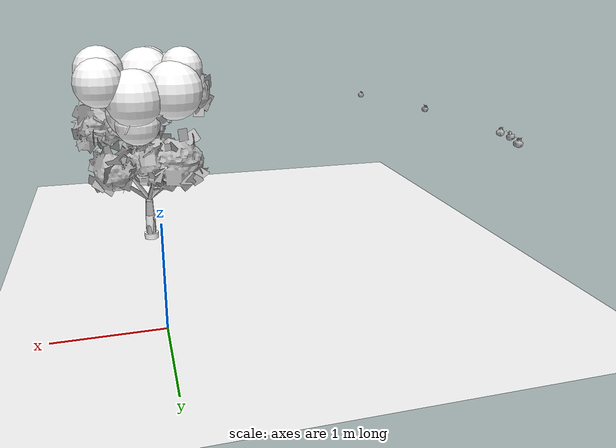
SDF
<sdf version="1.11">
 <world name="peach_orchard">
  <model name="ground">
   <static>true</static>
   <link name="link">
    <visual name="soil">
     <geometry><plane><normal>0 0 1</normal><size>32 22</size></plane></geometry>
     <material>
      <ambient>1 1 1 1</ambient>
      <diffuse>1 1 1 1</diffuse>
      <specular>0.1 0.1 0.1 1</specular>
      <pbr>
       <metal>
        <albedo_map>textures/soil_albedo.png</albedo_map>
        <normal_map type="tangent">textures/soil_normal.png</normal_map>
        <roughness>0.95</roughness>
        <metalness>0</metalness>
       </metal>
      </pbr>
     </material>
    </visual>
    <collision name="c_soil">
     <geometry><plane><normal>0 0 1</normal><size>32 22</size></plane></geometry>
    </collision>
   </link>
  </model>
  <model name="tree_r2_t2">
   <pose>0 -2.2 0 0 0 0</pose>
   <static>true</static>
   <link name="link">
    <visual name="tree_mesh">
     <pose>0 0 0 0 0 0.0732803</pose>
     <geometry>
      <mesh><uri>model://peach_sim/meshes/peach_tree_a.glb</uri><scale>0.938625 0.938625 0.938625</scale></mesh>
     </geometry>
    </visual>
    <visual name="trunk_0">
     <pose>0 0 0.149246 0 0 0</pose>
     <geometry><cylinder><radius>0.0567188</radius><length>0.298492</length></cylinder></geometry>
     <material>
      <ambient>1 1 1 1</ambient>
      <diffuse>1 1 1 1</diffuse>
      <specular>0.1 0.1 0.1 1</specular>
      <pbr>
       <metal>
        <albedo_map>textures/bark_albedo.png</albedo_map>
        <normal_map type="tangent">textures/bark_normal.png</normal_map>
        <roughness>0.9</roughness>
        <metalness>0</metalness>
       </metal>
      </pbr>
     </material>
    </visual>
    <collision name="c_trunk_0">
     <pose>0 0 0.149246 0 0 0</pose>
     <geometry><cylinder><radius>0.0567188</radius><length>0.298492</length></cylinder></geometry>
    </collision>
    <visual name="trunk_1">
     <pose>0 0 0.420602 0 0 0</pose>
     <geometry><cylinder><radius>0.0408375</radius><length>0.244221</length></cylinder></geometry>
     <material>
      <ambient>1 1 1 1</ambient>
      <diffuse>1 1 1 1</diffuse>
      <specular>0.1 0.1 0.1 1</specular>
      <pbr>
       <metal>
        <albedo_map>textures/bark_albedo.png</albedo_map>
        <normal_map type="tangent">textures/bark_normal.png</normal_map>
        <roughness>0.9</roughness>
        <metalness>0</metalness>
       </metal>
      </pbr>
     </material>
    </visual>
    <collision name="c_trunk_1">
     <pose>0 0 0.420602 0 0 0</pose>
     <geometry><cylinder><radius>0.0408375</radius><length>0.244221</length></cylinder></geometry>
    </collision>
    <visual name="root_flare">
     <pose>0 0 0.035 0 0 0</pose>
     <geometry><cylinder><radius>0.0822423</radius><length>0.07</length></cylinder></geometry>
     <material>
      <ambient>1 1 1 1</ambient>
      <diffuse>1 1 1 1</diffuse>
      <specular>0.1 0.1 0.1 1</specular>
      <pbr>
       <metal>
        <albedo_map>textures/bark_albedo.png</albedo_map>
        <normal_map type="tangent">textures/bark_normal.png</normal_map>
        <roughness>0.95</roughness>
        <metalness>0</metalness>
       </metal>
      </pbr>
     </material>
    </visual>
    <visual name="scaffold_0">
     <pose>-0.105177 0.219423 0.684219 0 0.920943 2.01777</pose>
     <geometry><cylinder><radius>0.022</radius><length>0.611245</length></cylinder></geometry>
     <material>
      <ambient>1 1 1 1</ambient>
      <diffuse>1 1 1 1</diffuse>
      <specular>0.1 0.1 0.1 1</specular>
      <pbr>
       <metal>
        <albedo_map>textures/bark_albedo.png</albedo_map>
        <normal_map type="tangent">textures/bark_normal.png</normal_map>
        <roughness>0.9</roughness>
        <metalness>0</metalness>
       </metal>
      </pbr>
     </material>
    </visual>
    <collision name="c_scaffold_0">
     <pose>-0.105177 0.219423 0.684219 0 0.920943 2.01777</pose>
     <geometry><cylinder><radius>0.022</radius><length>0.611245</length></cylinder></geometry>
    </collision>
    <visual name="branchlet_0_0">
     <pose>-0.273988 0.348989 0.852574 0 1.04501 3.0958</pose>
     <geometry><cylinder><radius>0.012</radius><length>0.252545</length></cylinder></geometry>
     <material>
      <ambient>1 1 1 1</ambient>
      <diffuse>1 1 1 1</diffuse>
      <specular>0.1 0.1 0.1 1</specular>
      <pbr>
       <metal>
        <albedo_map>textures/bark_albedo.png</albedo_map>
        <normal_map type="tangent">textures/bark_normal.png</normal_map>
        <roughness>0.9</roughness>
        <metalness>0</metalness>
       </metal>
      </pbr>
     </material>
    </visual>
    <visual name="branchlet_0_1">
     <pose>-0.262137 0.448355 0.870903 0 1.0742 2.36338</pose>
     <geometry><cylinder><radius>0.012</radius><length>0.285958</length></cylinder></geometry>
     <material>
      <ambient>1 1 1 1</ambient>
      <diffuse>1 1 1 1</diffuse>
      <specular>0.1 0.1 0.1 1</specular>
      <pbr>
       <metal>
        <albedo_map>textures/bark_albedo.png</albedo_map>
        <normal_map type="tangent">textures/bark_normal.png</normal_map>
        <roughness>0.9</roughness>
        <metalness>0</metalness>
       </metal>
      </pbr>
     </material>
    </visual>
    <visual name="branchlet_0_2">
     <pose>-0.172489 0.320523 0.809293 0 0.730607 2.20534</pose>
     <geometry><cylinder><radius>0.012</radius><length>0.273234</length></cylinder></geometry>
     <material>
      <ambient>1 1 1 1</ambient>
      <diffuse>1 1 1 1</diffuse>
      <specular>0.1 0.1 0.1 1</specular>
      <pbr>
       <metal>
        <albedo_map>textures/bark_albedo.png</albedo_map>
        <normal_map type="tangent">textures/bark_normal.png</normal_map>
        <roughness>0.9</roughness>
        <metalness>0</metalness>
       </metal>
      </pbr>
     </material>
    </visual>
    <visual name="scaffold_1">
     <pose>0.146953 0.317906 0.818832 0 0.83119 1.1378</pose>
     <geometry><cylinder><radius>0.022</radius><length>0.948183</length></cylinder></geometry>
     <material>
      <ambient>1 1 1 1</ambient>
      <diffuse>1 1 1 1</diffuse>
      <specular>0.1 0.1 0.1 1</specular>
      <pbr>
       <metal>
        <albedo_map>textures/bark_albedo.png</albedo_map>
        <normal_map type="tangent">textures/bark_normal.png</normal_map>
        <roughness>0.9</roughness>
        <metalness>0</metalness>
       </metal>
      </pbr>
     </material>
    </visual>
    <collision name="c_scaffold_1">
     <pose>0.146953 0.317906 0.818832 0 0.83119 1.1378</pose>
     <geometry><cylinder><radius>0.022</radius><length>0.948183</length></cylinder></geometry>
    </collision>
    <visual name="branchlet_1_0">
     <pose>0.294967 0.306516 0.852351 0 1.5633 -0.317238</pose>
     <geometry><cylinder><radius>0.012</radius><length>0.280149</length></cylinder></geometry>
     <material>
      <ambient>1 1 1 1</ambient>
      <diffuse>1 1 1 1</diffuse>
      <specular>0.1 0.1 0.1 1</specular>
      <pbr>
       <metal>
        <albedo_map>textures/bark_albedo.png</albedo_map>
        <normal_map type="tangent">textures/bark_normal.png</normal_map>
        <roughness>0.9</roughness>
        <metalness>0</metalness>
       </metal>
      </pbr>
     </material>
    </visual>
    <visual name="branchlet_1_1">
     <pose>0.364175 0.62596 1.13049 0 1.03218 0.618458</pose>
     <geometry><cylinder><radius>0.012</radius><length>0.318828</length></cylinder></geometry>
     <material>
      <ambient>1 1 1 1</ambient>
      <diffuse>1 1 1 1</diffuse>
      <specular>0.1 0.1 0.1 1</specular>
      <pbr>
       <metal>
        <albedo_map>textures/bark_albedo.png</albedo_map>
        <normal_map type="tangent">textures/bark_normal.png</normal_map>
        <roughness>0.9</roughness>
        <metalness>0</metalness>
       </metal>
      </pbr>
     </material>
    </visual>
    <visual name="branchlet_1_2">
     <pose>0.184749 0.583661 1.15233 0 0.567756 2.1721</pose>
     <geometry><cylinder><radius>0.012</radius><length>0.334068</length></cylinder></geometry>
     <material>
      <ambient>1 1 1 1</ambient>
      <diffuse>1 1 1 1</diffuse>
      <specular>0.1 0.1 0.1 1</specular>
      <pbr>
       <metal>
        <albedo_map>textures/bark_albedo.png</albedo_map>
        <normal_map type="tangent">textures/bark_normal.png</normal_map>
        <roughness>0.9</roughness>
        <metalness>0</metalness>
       </metal>
      </pbr>
     </material>
    </visual>
    <visual name="canopy_0">
     <pose>-0.0727092 0.33732 2.08729 0 0 0</pose>
     <geometry><sphere><radius>0.223566</radius></sphere></geometry>
     <material>
      <ambient>1 1 1 1</ambient>
      <diffuse>1 1 1 1</diffuse>
      <specular>0.1 0.1 0.1 1</specular>
      <pbr>
       <metal>
        <albedo_map>textures/leaf_albedo.png</albedo_map>
        <normal_map type="tangent">textures/leaf_normal.png</normal_map>
        <roughness>0.85</roughness>
        <metalness>0</metalness>
       </metal>
      </pbr>
     </material>
    </visual>
    <collision name="c_canopy_0">
     <pose>-0.0727092 0.33732 2.08729 0 0 0</pose>
     <geometry><sphere><radius>0.223566</radius></sphere></geometry>
    </collision>
    <visual name="canopy_1">
     <pose>0.442419 0.650157 2.10524 0 0 0</pose>
     <geometry><sphere><radius>0.248792</radius></sphere></geometry>
     <material>
      <ambient>1 1 1 1</ambient>
      <diffuse>1 1 1 1</diffuse>
      <specular>0.1 0.1 0.1 1</specular>
      <pbr>
       <metal>
        <albedo_map>textures/leaf_albedo.png</albedo_map>
        <normal_map type="tangent">textures/leaf_normal.png</normal_map>
        <roughness>0.85</roughness>
        <metalness>0</metalness>
       </metal>
      </pbr>
     </material>
    </visual>
    <collision name="c_canopy_1">
     <pose>0.442419 0.650157 2.10524 0 0 0</pose>
     <geometry><sphere><radius>0.248792</radius></sphere></geometry>
    </collision>
    <visual name="canopy_2">
     <pose>-0.311379 0.421102 2.00067 0 0 0</pose>
     <geometry><sphere><radius>0.254613</radius></sphere></geometry>
     <material>
      <ambient>1 1 1 1</ambient>
      <diffuse>1 1 1 1</diffuse>
      <specular>0.1 0.1 0.1 1</specular>
      <pbr>
       <metal>
        <albedo_map>textures/leaf_albedo.png</albedo_map>
        <normal_map type="tangent">textures/leaf_normal.png</normal_map>
        <roughness>0.85</roughness>
        <metalness>0</metalness>
       </metal>
      </pbr>
     </material>
    </visual>
    <collision name="c_canopy_2">
     <pose>-0.311379 0.421102 2.00067 0 0 0</pose>
     <geometry><sphere><radius>0.254613</radius></sphere></geometry>
    </collision>
    <visual name="canopy_3">
     <pose>-0.0194499 0.480858 2.02059 0 0 0</pose>
     <geometry><sphere><radius>0.295987</radius></sphere></geometry>
     <material>
      <ambient>1 1 1 1</ambient>
      <diffuse>1 1 1 1</diffuse>
      <specular>0.1 0.1 0.1 1</specular>
      <pbr>
       <metal>
        <albedo_map>textures/leaf_albedo.png</albedo_map>
        <normal_map type="tangent">textures/leaf_normal.png</normal_map>
        <roughness>0.85</roughness>
        <metalness>0</metalness>
       </metal>
      </pbr>
     </material>
    </visual>
    <visual name="canopy_4">
     <pose>-0.284336 0.7595 1.89505 0 0 0</pose>
     <geometry><sphere><radius>0.305087</radius></sphere></geometry>
     <material>
      <ambient>1 1 1 1</ambient>
      <diffuse>1 1 1 1</diffuse>
      <specular>0.1 0.1 0.1 1</specular>
      <pbr>
       <metal>
        <albedo_map>textures/leaf_albedo.png</albedo_map>
        <normal_map type="tangent">textures/leaf_normal.png</normal_map>
        <roughness>0.85</roughness>
        <metalness>0</metalness>
       </metal>
      </pbr>
     </material>
    </visual>
    <visual name="canopy_5">
     <pose>0.44951 0.900048 2.01518 0 0 0</pose>
     <geometry><sphere><radius>0.243243</radius></sphere></geometry>
     <material>
      <ambient>1 1 1 1</ambient>
      <diffuse>1 1 1 1</diffuse>
      <specular>0.1 0.1 0.1 1</specular>
      <pbr>
       <metal>
        <albedo_map>textures/leaf_albedo.png</albedo_map>
        <normal_map type="tangent">textures/leaf_normal.png</normal_map>
        <roughness>0.85</roughness>
        <metalness>0</metalness>
       </metal>
      </pbr>
     </material>
    </visual>
    <visual name="canopy_6">
     <pose>-0.39055 0.618424 2.10423 0 0 0</pose>
     <geometry><sphere><radius>0.220493</radius></sphere></geometry>
     <material>
      <ambient>1 1 1 1</ambient>
      <diffuse>1 1 1 1</diffuse>
      <specular>0.1 0.1 0.1 1</specular>
      <pbr>
       <metal>
        <albedo_map>textures/leaf_albedo.png</albedo_map>
        <normal_map type="tangent">textures/leaf_normal.png</normal_map>
        <roughness>0.85</roughness>
        <metalness>0</metalness>
       </metal>
      </pbr>
     </material>
    </visual>
    <visual name="canopy_7">
     <pose>0.11572 0.853509 1.84725 0 0 0</pose>
     <geometry><sphere><radius>0.293017</radius></sphere></geometry>
     <material>
      <ambient>1 1 1 1</ambient>
      <diffuse>1 1 1 1</diffuse>
      <specular>0.1 0.1 0.1 1</specular>
      <pbr>
       <metal>
        <albedo_map>textures/leaf_albedo.png</albedo_map>
        <normal_map type="tangent">textures/leaf_normal.png</normal_map>
        <roughness>0.85</roughness>
        <metalness>0</metalness>
       </metal>
      </pbr>
     </material>
    </visual>
    <visual name="canopy_8">
     <pose>-0.0176664 0.357211 1.58618 0 0 0</pose>
     <geometry><sphere><radius>0.195568</radius></sphere></geometry>
     <material>
      <ambient>1 1 1 1</ambient>
      <diffuse>1 1 1 1</diffuse>
      <specular>0.1 0.1 0.1 1</specular>
      <pbr>
       <metal>
        <albedo_map>textures/leaf_albedo.png</albedo_map>
        <normal_map type="tangent">textures/leaf_normal.png</normal_map>
        <roughness>0.85</roughness>
        <metalness>0</metalness>
       </metal>
      </pbr>
     </material>
    </visual>
    <visual name="canopy_9">
     <pose>0.0960423 0.744695 1.57565 0 0 0</pose>
     <geometry><sphere><radius>0.237712</radius></sphere></geometry>
     <material>
      <ambient>1 1 1 1</ambient>
      <diffuse>1 1 1 1</diffuse>
      <specular>0.1 0.1 0.1 1</specular>
      <pbr>
       <metal>
        <albedo_map>textures/leaf_albedo.png</albedo_map>
        <normal_map type="tangent">textures/leaf_normal.png</normal_map>
        <roughness>0.85</roughness>
        <metalness>0</metalness>
       </metal>
      </pbr>
     </material>
    </visual>
    <visual name="canopy_10">
     <pose>0.12997 0.61707 1.66473 0 0 0</pose>
     <geometry><sphere><radius>0.28139</radius></sphere></geometry>
     <material>
      <ambient>1 1 1 1</ambient>
      <diffuse>1 1 1 1</diffuse>
      <specular>0.1 0.1 0.1 1</specular>
      <pbr>
       <metal>
        <albedo_map>textures/leaf_albedo.png</albedo_map>
        <normal_map type="tangent">textures/leaf_normal.png</normal_map>
        <roughness>0.85</roughness>
        <metalness>0</metalness>
       </metal>
      </pbr>
     </material>
    </visual>
    <visual name="canopy_11">
     <pose>0.0135883 0.312285 2.01569 0 0 0</pose>
     <geometry><sphere><radius>0.255718</radius></sphere></geometry>
     <material>
      <ambient>1 1 1 1</ambient>
      <diffuse>1 1 1 1</diffuse>
      <specular>0.1 0.1 0.1 1</specular>
      <pbr>
       <metal>
        <albedo_map>textures/leaf_albedo.png</albedo_map>
        <normal_map type="tangent">textures/leaf_normal.png</normal_map>
        <roughness>0.85</roughness>
        <metalness>0</metalness>
       </metal>
      </pbr>
     </material>
    </visual>
    <visual name="foliage_0">
     <pose>0.384078 0.0882748 1.41324 0 0 0</pose>
     <geometry><sphere><radius>0.0872869</radius></sphere></geometry>
     <material>
      <ambient>1 1 1 1</ambient>
      <diffuse>1 1 1 1</diffuse>
      <specular>0.1 0.1 0.1 1</specular>
      <pbr>
       <metal>
        <albedo_map>textures/leaf_albedo.png</albedo_map>
        <normal_map type="tangent">textures/leaf_normal.png</normal_map>
        <roughness>0.85</roughness>
        <metalness>0</metalness>
       </metal>
      </pbr>
     </material>
    </visual>
    <visual name="foliage_4">
     <pose>0.149591 0.570536 1.45314 0 0 0</pose>
     <geometry><sphere><radius>0.112897</radius></sphere></geometry>
     <material>
      <ambient>1 1 1 1</ambient>
      <diffuse>1 1 1 1</diffuse>
      <specular>0.1 0.1 0.1 1</specular>
      <pbr>
       <metal>
        <albedo_map>textures/leaf_albedo.png</albedo_map>
        <normal_map type="tangent">textures/leaf_normal.png</normal_map>
        <roughness>0.85</roughness>
        <metalness>0</metalness>
       </metal>
      </pbr>
     </material>
    </visual>
    <visual name="foliage_8">
     <pose>0.157574 0.695474 1.46246 0 0 0</pose>
     <geometry><sphere><radius>0.0905918</radius></sphere></geometry>
     <material>
      <ambient>1 1 1 1</ambient>
      <diffuse>1 1 1 1</diffuse>
      <specular>0.1 0.1 0.1 1</specular>
      <pbr>
       <metal>
        <albedo_map>textures/leaf_albedo.png</albedo_map>
        <normal_map type="tangent">textures/leaf_normal.png</normal_map>
        <roughness>0.85</roughness>
        <metalness>0</metalness>
       </metal>
      </pbr>
     </material>
    </visual>
    <visual name="twig_0">
     <pose>0.348098 0.170669 1.51059 0 0.337969 -2.3536</pose>
     <geometry><cylinder><radius>0.007</radius><length>0.100106</length></cylinder></geometry>
     <material>
      <ambient>1 1 1 1</ambient>
      <diffuse>1 1 1 1</diffuse>
      <specular>0.1 0.1 0.1 1</specular>
      <pbr>
       <metal>
        <albedo_map>textures/bark_albedo.png</albedo_map>
        <normal_map type="tangent">textures/bark_normal.png</normal_map>
        <roughness>0.9</roughness>
        <metalness>0</metalness>
       </metal>
      </pbr>
     </material>
    </visual>
    <visual name="twig_1">
     <pose>0.289545 0.202915 1.55564 0 0.394971 -2.24681</pose>
     <geometry><cylinder><radius>0.007</radius><length>0.132372</length></cylinder></geometry>
     <material>
      <ambient>1 1 1 1</ambient>
      <diffuse>1 1 1 1</diffuse>
      <specular>0.1 0.1 0.1 1</specular>
      <pbr>
       <metal>
        <albedo_map>textures/bark_albedo.png</albedo_map>
        <normal_map type="tangent">textures/bark_normal.png</normal_map>
        <roughness>0.9</roughness>
        <metalness>0</metalness>
       </metal>
      </pbr>
     </material>
    </visual>
    <visual name="twig_2">
     <pose>0.254206 0.294747 1.55952 0 0.373257 3.1392</pose>
     <geometry><cylinder><radius>0.007</radius><length>0.124613</length></cylinder></geometry>
     <material>
      <ambient>1 1 1 1</ambient>
      <diffuse>1 1 1 1</diffuse>
      <specular>0.1 0.1 0.1 1</specular>
      <pbr>
       <metal>
        <albedo_map>textures/bark_albedo.png</albedo_map>
        <normal_map type="tangent">textures/bark_normal.png</normal_map>
        <roughness>0.9</roughness>
        <metalness>0</metalness>
       </metal>
      </pbr>
     </material>
    </visual>
    <visual name="twig_3">
     <pose>0.179179 0.472974 1.56774 0 0.753778 -2.7549</pose>
     <geometry><cylinder><radius>0.007</radius><length>0.141034</length></cylinder></geometry>
     <material>
      <ambient>1 1 1 1</ambient>
      <diffuse>1 1 1 1</diffuse>
      <specular>0.1 0.1 0.1 1</specular>
      <pbr>
       <metal>
        <albedo_map>textures/bark_albedo.png</albedo_map>
        <normal_map type="tangent">textures/bark_normal.png</normal_map>
        <roughness>0.9</roughness>
        <metalness>0</metalness>
       </metal>
      </pbr>
     </material>
    </visual>
    <visual name="twig_4">
     <pose>0.178588 0.609278 1.61048 0 0.361495 -2.97957</pose>
     <geometry><cylinder><radius>0.007</radius><length>0.189292</length></cylinder></geometry>
     <material>
      <ambient>1 1 1 1</ambient>
      <diffuse>1 1 1 1</diffuse>
      <specular>0.1 0.1 0.1 1</specular>
      <pbr>
       <metal>
        <albedo_map>textures/bark_albedo.png</albedo_map>
        <normal_map type="tangent">textures/bark_normal.png</normal_map>
        <roughness>0.9</roughness>
        <metalness>0</metalness>
       </metal>
      </pbr>
     </material>
    </visual>
    <visual name="twig_5">
     <pose>0.15227 0.654028 1.60068 0 0.713816 -2.70499</pose>
     <geometry><cylinder><radius>0.007</radius><length>0.208616</length></cylinder></geometry>
     <material>
      <ambient>1 1 1 1</ambient>
      <diffuse>1 1 1 1</diffuse>
      <specular>0.1 0.1 0.1 1</specular>
      <pbr>
       <metal>
        <albedo_map>textures/bark_albedo.png</albedo_map>
        <normal_map type="tangent">textures/bark_normal.png</normal_map>
        <roughness>0.9</roughness>
        <metalness>0</metalness>
       </metal>
      </pbr>
     </material>
    </visual>
    <visual name="twig_6">
     <pose>0.138508 0.584379 1.59876 0 0.705377 -2.99559</pose>
     <geometry><cylinder><radius>0.007</radius><length>0.197313</length></cylinder></geometry>
     <material>
      <ambient>1 1 1 1</ambient>
      <diffuse>1 1 1 1</diffuse>
      <specular>0.1 0.1 0.1 1</specular>
      <pbr>
       <metal>
        <albedo_map>textures/bark_albedo.png</albedo_map>
        <normal_map type="tangent">textures/bark_normal.png</normal_map>
        <roughness>0.9</roughness>
        <metalness>0</metalness>
       </metal>
      </pbr>
     </material>
    </visual>
    <visual name="twig_7">
     <pose>0.207751 0.621876 1.57335 0 0.357078 -2.01415</pose>
     <geometry><cylinder><radius>0.007</radius><length>0.163286</length></cylinder></geometry>
     <material>
      <ambient>1 1 1 1</ambient>
      <diffuse>1 1 1 1</diffuse>
      <specular>0.1 0.1 0.1 1</specular>
      <pbr>
       <metal>
        <albedo_map>textures/bark_albedo.png</albedo_map>
        <normal_map type="tangent">textures/bark_normal.png</normal_map>
        <roughness>0.9</roughness>
        <metalness>0</metalness>
       </metal>
      </pbr>
     </material>
    </visual>
    <visual name="twig_8">
     <pose>0.176389 0.796566 1.54538 0 0.442007 2.54137</pose>
     <geometry><cylinder><radius>0.007</radius><length>0.104022</length></cylinder></geometry>
     <material>
      <ambient>1 1 1 1</ambient>
      <diffuse>1 1 1 1</diffuse>
      <specular>0.1 0.1 0.1 1</specular>
      <pbr>
       <metal>
        <albedo_map>textures/bark_albedo.png</albedo_map>
        <normal_map type="tangent">textures/bark_normal.png</normal_map>
        <roughness>0.9</roughness>
        <metalness>0</metalness>
       </metal>
      </pbr>
     </material>
    </visual>
    <visual name="twig_9">
     <pose>0.158031 0.805536 1.58017 0 0.444613 -2.77092</pose>
     <geometry><cylinder><radius>0.007</radius><length>0.171859</length></cylinder></geometry>
     <material>
      <ambient>1 1 1 1</ambient>
      <diffuse>1 1 1 1</diffuse>
      <specular>0.1 0.1 0.1 1</specular>
      <pbr>
       <metal>
        <albedo_map>textures/bark_albedo.png</albedo_map>
        <normal_map type="tangent">textures/bark_normal.png</normal_map>
        <roughness>0.9</roughness>
        <metalness>0</metalness>
       </metal>
      </pbr>
     </material>
    </visual>
    <visual name="twig_10">
     <pose>0.177401 0.98937 1.61043 0 0.556444 -2.6364</pose>
     <geometry><cylinder><radius>0.007</radius><length>0.215482</length></cylinder></geometry>
     <material>
      <ambient>1 1 1 1</ambient>
      <diffuse>1 1 1 1</diffuse>
      <specular>0.1 0.1 0.1 1</specular>
      <pbr>
       <metal>
        <albedo_map>textures/bark_albedo.png</albedo_map>
        <normal_map type="tangent">textures/bark_normal.png</normal_map>
        <roughness>0.9</roughness>
        <metalness>0</metalness>
       </metal>
      </pbr>
     </material>
    </visual>
   </link>
  </model>
  <model name="peach_tree_r1_t1_07">
   <pose>-3.45 -4.12978 1.27 0 0.218335 1.98063</pose>
   <static>true</static>
   <link name="bag">
    <visual name="bag_mesh">
     <pose>0 0 0.0388935 0 0 0</pose>
     <geometry>
      <mesh><uri>model://peach_sim/meshes/bagged_peach.glb</uri><scale>1.03411 1.18301 0.883942</scale></mesh>
     </geometry>
    </visual>
    <visual name="body">
     <pose>0 0 0.0208935 0 0 0</pose>
     <geometry><ellipsoid><radii>0.0387792 0.0307582 0.0225649</radii></ellipsoid></geometry>
     <material>
      <ambient>1 1 1 1</ambient>
      <diffuse>1 1 1 1</diffuse>
      <specular>0.1 0.1 0.1 1</specular>
      <pbr>
       <metal>
        <albedo_map>textures/paper_bag_albedo.png</albedo_map>
        <normal_map type="tangent">textures/paper_bag_normal.png</normal_map>
        <roughness>0.72</roughness>
        <metalness>0</metalness>
       </metal>
      </pbr>
     </material>
    </visual>
    <visual name="bottom_fold">
     <pose>0 0 0.012 0 0 0.35</pose>
     <geometry><box><size>0.0601078 0.0353719 0.022</size></box></geometry>
     <material>
      <ambient>1 1 1 1</ambient>
      <diffuse>1 1 1 1</diffuse>
      <specular>0.1 0.1 0.1 1</specular>
      <pbr>
       <metal>
        <albedo_map>textures/paper_bag_albedo.png</albedo_map>
        <normal_map type="tangent">textures/paper_bag_normal.png</normal_map>
        <roughness>0.8</roughness>
        <metalness>0</metalness>
       </metal>
      </pbr>
     </material>
    </visual>
    <visual name="fruit">
     <pose>0 0 0.0208553 0 0 0</pose>
     <geometry><sphere><radius>0.0279295</radius></sphere></geometry>
     <material>
      <ambient>1 1 1 1</ambient>
      <diffuse>1 1 1 1</diffuse>
      <specular>0.1 0.1 0.1 1</specular>
      <pbr>
       <metal>
        <albedo_map>textures/fruit_skin_albedo.png</albedo_map>
        <normal_map type="tangent">textures/fruit_skin_normal.png</normal_map>
        <roughness>0.55</roughness>
        <metalness>0</metalness>
       </metal>
      </pbr>
     </material>
    </visual>
    <visual name="neck">
     <pose>0 0 0.0507869 0 0 0</pose>
     <geometry><cylinder><radius>0.013</radius><length>0.018</length></cylinder></geometry>
     <material>
      <ambient>1 1 1 1</ambient>
      <diffuse>1 1 1 1</diffuse>
      <specular>0.1 0.1 0.1 1</specular>
      <pbr>
       <metal>
        <albedo_map>textures/paper_bag_albedo.png</albedo_map>
        <normal_map type="tangent">textures/paper_bag_normal.png</normal_map>
        <roughness>0.75</roughness>
        <metalness>0</metalness>
       </metal>
      </pbr>
     </material>
    </visual>
    <visual name="gather">
     <pose>0 0 0.0317869 0 0 0</pose>
     <geometry><cylinder><radius>0.019</radius><length>0.02</length></cylinder></geometry>
     <material>
      <ambient>1 1 1 1</ambient>
      <diffuse>1 1 1 1</diffuse>
      <specular>0.1 0.1 0.1 1</specular>
      <pbr>
       <metal>
        <albedo_map>textures/paper_bag_albedo.png</albedo_map>
        <normal_map type="tangent">textures/paper_bag_normal.png</normal_map>
        <roughness>0.8</roughness>
        <metalness>0</metalness>
       </metal>
      </pbr>
     </material>
    </visual>
    <visual name="inner_paper">
     <pose>0 0 0.0557869 0 0 0</pose>
     <geometry><cylinder><radius>0.01</radius><length>0.008</length></cylinder></geometry>
     <material>
      <ambient>0.180392 0.14902 0.133333 1</ambient>
      <diffuse>0.180392 0.14902 0.133333 1</diffuse>
      <specular>0.1 0.1 0.1 1</specular>
     </material>
    </visual>
    <visual name="wire_0">
     <pose>0 0 0.0457869 0 0 0</pose>
     <geometry><cylinder><radius>0.0205</radius><length>0.0035</length></cylinder></geometry>
     <material>
      <ambient>0.25 0.25 0.25 1</ambient>
      <diffuse>0.25 0.25 0.25 1</diffuse>
      <specular>0.1 0.1 0.1 1</specular>
     </material>
    </visual>
    <visual name="wire_1">
     <pose>0 0 0.0527869 0 0 0</pose>
     <geometry><cylinder><radius>0.0205</radius><length>0.0035</length></cylinder></geometry>
     <material>
      <ambient>0.25 0.25 0.25 1</ambient>
      <diffuse>0.25 0.25 0.25 1</diffuse>
      <specular>0.1 0.1 0.1 1</specular>
     </material>
    </visual>
    <visual name="wire_tail">
     <pose>0.01 0 0.0537869 0 0.521618 0</pose>
     <geometry><cylinder><radius>0.0012</radius><length>0.026</length></cylinder></geometry>
     <material>
      <ambient>0.25 0.25 0.25 1</ambient>
      <diffuse>0.25 0.25 0.25 1</diffuse>
      <specular>0.1 0.1 0.1 1</specular>
     </material>
    </visual>
    <collision name="c_body">
     <pose>0 0 0.0208935 0 0 0</pose>
     <geometry><cylinder><radius>0.0387792</radius><length>0.0417869</length></cylinder></geometry>
    </collision>
   </link>
  </model>
  <model name="peach_tree_r1_t2_02">
   <pose>-3.50205 -2.10538 1.40431 0 0.110928 1.83561</pose>
   <static>true</static>
   <link name="bag">
    <visual name="bag_mesh">
     <pose>0 0 0.0398181 0 0 0</pose>
     <geometry>
      <mesh><uri>model://peach_sim/meshes/bagged_peach.glb</uri><scale>0.906768 1.02835 0.904958</scale></mesh>
     </geometry>
    </visual>
    <visual name="body">
     <pose>0 0 0.0218181 0 0 0</pose>
     <geometry><ellipsoid><radii>0.0340038 0.0267372 0.0235636</radii></ellipsoid></geometry>
     <material>
      <ambient>1 1 1 1</ambient>
      <diffuse>1 1 1 1</diffuse>
      <specular>0.1 0.1 0.1 1</specular>
      <pbr>
       <metal>
        <albedo_map>textures/paper_bag_albedo.png</albedo_map>
        <normal_map type="tangent">textures/paper_bag_normal.png</normal_map>
        <roughness>0.72</roughness>
        <metalness>0</metalness>
       </metal>
      </pbr>
     </material>
    </visual>
    <visual name="bottom_fold">
     <pose>0 0 0.012 0 0 0.35</pose>
     <geometry><box><size>0.0527059 0.0307478 0.022</size></box></geometry>
     <material>
      <ambient>1 1 1 1</ambient>
      <diffuse>1 1 1 1</diffuse>
      <specular>0.1 0.1 0.1 1</specular>
      <pbr>
       <metal>
        <albedo_map>textures/paper_bag_albedo.png</albedo_map>
        <normal_map type="tangent">textures/paper_bag_normal.png</normal_map>
        <roughness>0.8</roughness>
        <metalness>0</metalness>
       </metal>
      </pbr>
     </material>
    </visual>
    <visual name="fruit">
     <pose>0 0 0.0210429 0 0 0</pose>
     <geometry><sphere><radius>0.0281246</radius></sphere></geometry>
     <material>
      <ambient>1 1 1 1</ambient>
      <diffuse>1 1 1 1</diffuse>
      <specular>0.1 0.1 0.1 1</specular>
      <pbr>
       <metal>
        <albedo_map>textures/fruit_skin_albedo.png</albedo_map>
        <normal_map type="tangent">textures/fruit_skin_normal.png</normal_map>
        <roughness>0.55</roughness>
        <metalness>0</metalness>
       </metal>
      </pbr>
     </material>
    </visual>
    <visual name="neck">
     <pose>0 0 0.0526363 0 0 0</pose>
     <geometry><cylinder><radius>0.013</radius><length>0.018</length></cylinder></geometry>
     <material>
      <ambient>1 1 1 1</ambient>
      <diffuse>1 1 1 1</diffuse>
      <specular>0.1 0.1 0.1 1</specular>
      <pbr>
       <metal>
        <albedo_map>textures/paper_bag_albedo.png</albedo_map>
        <normal_map type="tangent">textures/paper_bag_normal.png</normal_map>
        <roughness>0.75</roughness>
        <metalness>0</metalness>
       </metal>
      </pbr>
     </material>
    </visual>
    <visual name="gather">
     <pose>0 0 0.0336363 0 0 0</pose>
     <geometry><cylinder><radius>0.019</radius><length>0.02</length></cylinder></geometry>
     <material>
      <ambient>1 1 1 1</ambient>
      <diffuse>1 1 1 1</diffuse>
      <specular>0.1 0.1 0.1 1</specular>
      <pbr>
       <metal>
        <albedo_map>textures/paper_bag_albedo.png</albedo_map>
        <normal_map type="tangent">textures/paper_bag_normal.png</normal_map>
        <roughness>0.8</roughness>
        <metalness>0</metalness>
       </metal>
      </pbr>
     </material>
    </visual>
    <visual name="inner_paper">
     <pose>0 0 0.0576363 0 0 0</pose>
     <geometry><cylinder><radius>0.01</radius><length>0.008</length></cylinder></geometry>
     <material>
      <ambient>0.180392 0.14902 0.133333 1</ambient>
      <diffuse>0.180392 0.14902 0.133333 1</diffuse>
      <specular>0.1 0.1 0.1 1</specular>
     </material>
    </visual>
    <visual name="wire_0">
     <pose>0 0 0.0476363 0 0 0</pose>
     <geometry><cylinder><radius>0.0205</radius><length>0.0035</length></cylinder></geometry>
     <material>
      <ambient>0.25 0.25 0.25 1</ambient>
      <diffuse>0.25 0.25 0.25 1</diffuse>
      <specular>0.1 0.1 0.1 1</specular>
     </material>
    </visual>
    <visual name="wire_1">
     <pose>0 0 0.0546363 0 0 0</pose>
     <geometry><cylinder><radius>0.0205</radius><length>0.0035</length></cylinder></geometry>
     <material>
      <ambient>0.25 0.25 0.25 1</ambient>
      <diffuse>0.25 0.25 0.25 1</diffuse>
      <specular>0.1 0.1 0.1 1</specular>
     </material>
    </visual>
    <visual name="wire_tail">
     <pose>0.01 0 0.0556363 0 0.521618 0</pose>
     <geometry><cylinder><radius>0.0012</radius><length>0.026</length></cylinder></geometry>
     <material>
      <ambient>0.25 0.25 0.25 1</ambient>
      <diffuse>0.25 0.25 0.25 1</diffuse>
      <specular>0.1 0.1 0.1 1</specular>
     </material>
    </visual>
    <collision name="c_body">
     <pose>0 0 0.0218181 0 0 0</pose>
     <geometry><cylinder><radius>0.0340038</radius><length>0.0436363</length></cylinder></geometry>
    </collision>
   </link>
  </model>
  <model name="peach_tree_r1_t3_00">
   <pose>-3.48799 -0.151029 1.41072 0 0.0671404 1.56057</pose>
   <static>true</static>
   <link name="bag">
    <visual name="bag_mesh">
     <pose>0 0 0.0415584 0 0 0</pose>
     <geometry>
      <mesh><uri>model://peach_sim/meshes/bagged_peach.glb</uri><scale>1.01555 1.22353 0.944509</scale></mesh>
     </geometry>
    </visual>
    <visual name="body">
     <pose>0 0 0.0235584 0 0 0</pose>
     <geometry><ellipsoid><radii>0.0380832 0.0318119 0.025443</radii></ellipsoid></geometry>
     <material>
      <ambient>1 1 1 1</ambient>
      <diffuse>1 1 1 1</diffuse>
      <specular>0.1 0.1 0.1 1</specular>
      <pbr>
       <metal>
        <albedo_map>textures/paper_bag_albedo.png</albedo_map>
        <normal_map type="tangent">textures/paper_bag_normal.png</normal_map>
        <roughness>0.72</roughness>
        <metalness>0</metalness>
       </metal>
      </pbr>
     </material>
    </visual>
    <visual name="bottom_fold">
     <pose>0 0 0.012 0 0 0.35</pose>
     <geometry><box><size>0.0590289 0.0365837 0.022</size></box></geometry>
     <material>
      <ambient>1 1 1 1</ambient>
      <diffuse>1 1 1 1</diffuse>
      <specular>0.1 0.1 0.1 1</specular>
      <pbr>
       <metal>
        <albedo_map>textures/paper_bag_albedo.png</albedo_map>
        <normal_map type="tangent">textures/paper_bag_normal.png</normal_map>
        <roughness>0.8</roughness>
        <metalness>0</metalness>
       </metal>
      </pbr>
     </material>
    </visual>
    <visual name="fruit">
     <pose>0 0 0.0173302 0 0 0</pose>
     <geometry><sphere><radius>0.0242634</radius></sphere></geometry>
     <material>
      <ambient>1 1 1 1</ambient>
      <diffuse>1 1 1 1</diffuse>
      <specular>0.1 0.1 0.1 1</specular>
      <pbr>
       <metal>
        <albedo_map>textures/fruit_skin_albedo.png</albedo_map>
        <normal_map type="tangent">textures/fruit_skin_normal.png</normal_map>
        <roughness>0.55</roughness>
        <metalness>0</metalness>
       </metal>
      </pbr>
     </material>
    </visual>
    <visual name="neck">
     <pose>0 0 0.0561168 0 0 0</pose>
     <geometry><cylinder><radius>0.013</radius><length>0.018</length></cylinder></geometry>
     <material>
      <ambient>1 1 1 1</ambient>
      <diffuse>1 1 1 1</diffuse>
      <specular>0.1 0.1 0.1 1</specular>
      <pbr>
       <metal>
        <albedo_map>textures/paper_bag_albedo.png</albedo_map>
        <normal_map type="tangent">textures/paper_bag_normal.png</normal_map>
        <roughness>0.75</roughness>
        <metalness>0</metalness>
       </metal>
      </pbr>
     </material>
    </visual>
    <visual name="gather">
     <pose>0 0 0.0371168 0 0 0</pose>
     <geometry><cylinder><radius>0.019</radius><length>0.02</length></cylinder></geometry>
     <material>
      <ambient>1 1 1 1</ambient>
      <diffuse>1 1 1 1</diffuse>
      <specular>0.1 0.1 0.1 1</specular>
      <pbr>
       <metal>
        <albedo_map>textures/paper_bag_albedo.png</albedo_map>
        <normal_map type="tangent">textures/paper_bag_normal.png</normal_map>
        <roughness>0.8</roughness>
        <metalness>0</metalness>
       </metal>
      </pbr>
     </material>
    </visual>
    <visual name="inner_paper">
     <pose>0 0 0.0611168 0 0 0</pose>
     <geometry><cylinder><radius>0.01</radius><length>0.008</length></cylinder></geometry>
     <material>
      <ambient>0.180392 0.14902 0.133333 1</ambient>
      <diffuse>0.180392 0.14902 0.133333 1</diffuse>
      <specular>0.1 0.1 0.1 1</specular>
     </material>
    </visual>
    <visual name="wire_0">
     <pose>0 0 0.0511168 0 0 0</pose>
     <geometry><cylinder><radius>0.0205</radius><length>0.0035</length></cylinder></geometry>
     <material>
      <ambient>0.25 0.25 0.25 1</ambient>
      <diffuse>0.25 0.25 0.25 1</diffuse>
      <specular>0.1 0.1 0.1 1</specular>
     </material>
    </visual>
    <visual name="wire_1">
     <pose>0 0 0.0581168 0 0 0</pose>
     <geometry><cylinder><radius>0.0205</radius><length>0.0035</length></cylinder></geometry>
     <material>
      <ambient>0.25 0.25 0.25 1</ambient>
      <diffuse>0.25 0.25 0.25 1</diffuse>
      <specular>0.1 0.1 0.1 1</specular>
     </material>
    </visual>
    <visual name="wire_tail">
     <pose>0.01 0 0.0591168 0 0.521618 0</pose>
     <geometry><cylinder><radius>0.0012</radius><length>0.026</length></cylinder></geometry>
     <material>
      <ambient>0.25 0.25 0.25 1</ambient>
      <diffuse>0.25 0.25 0.25 1</diffuse>
      <specular>0.1 0.1 0.1 1</specular>
     </material>
    </visual>
    <collision name="c_body">
     <pose>0 0 0.0235584 0 0 0</pose>
     <geometry><cylinder><radius>0.0380832</radius><length>0.0471168</length></cylinder></geometry>
    </collision>
   </link>
  </model>
  <model name="peach_tree_r1_t3_01">
   <pose>-3.49756 -0.284872 1.45 0 0.375251 -1.2834</pose>
   <static>true</static>
   <link name="bag">
    <visual name="bag_mesh">
     <pose>0 0 0.039793 0 0 -0</pose>
     <geometry>
      <mesh><uri>model://peach_sim/meshes/bagged_peach.glb</uri><scale>0.968857 1.05755 0.904387</scale></mesh>
     </geometry>
    </visual>
    <visual name="body">
     <pose>0 0 0.021793 0 0 0</pose>
     <geometry><ellipsoid><radii>0.0363321 0.0274963 0.0235365</radii></ellipsoid></geometry>
     <material>
      <ambient>1 1 1 1</ambient>
      <diffuse>1 1 1 1</diffuse>
      <specular>0.1 0.1 0.1 1</specular>
      <pbr>
       <metal>
        <albedo_map>textures/paper_bag_albedo.png</albedo_map>
        <normal_map type="tangent">textures/paper_bag_normal.png</normal_map>
        <roughness>0.72</roughness>
        <metalness>0</metalness>
       </metal>
      </pbr>
     </material>
    </visual>
    <visual name="bottom_fold">
     <pose>0 0 0.012 0 0 0.35</pose>
     <geometry><box><size>0.0563148 0.0316207 0.022</size></box></geometry>
     <material>
      <ambient>1 1 1 1</ambient>
      <diffuse>1 1 1 1</diffuse>
      <specular>0.1 0.1 0.1 1</specular>
      <pbr>
       <metal>
        <albedo_map>textures/paper_bag_albedo.png</albedo_map>
        <normal_map type="tangent">textures/paper_bag_normal.png</normal_map>
        <roughness>0.8</roughness>
        <metalness>0</metalness>
       </metal>
      </pbr>
     </material>
    </visual>
    <visual name="fruit">
     <pose>0 0 0.0185783 0 0 0</pose>
     <geometry><sphere><radius>0.0255614</radius></sphere></geometry>
     <material>
      <ambient>1 1 1 1</ambient>
      <diffuse>1 1 1 1</diffuse>
      <specular>0.1 0.1 0.1 1</specular>
      <pbr>
       <metal>
        <albedo_map>textures/fruit_skin_albedo.png</albedo_map>
        <normal_map type="tangent">textures/fruit_skin_normal.png</normal_map>
        <roughness>0.55</roughness>
        <metalness>0</metalness>
       </metal>
      </pbr>
     </material>
    </visual>
    <visual name="neck">
     <pose>0 0 0.052586 0 0 0</pose>
     <geometry><cylinder><radius>0.013</radius><length>0.018</length></cylinder></geometry>
     <material>
      <ambient>1 1 1 1</ambient>
      <diffuse>1 1 1 1</diffuse>
      <specular>0.1 0.1 0.1 1</specular>
      <pbr>
       <metal>
        <albedo_map>textures/paper_bag_albedo.png</albedo_map>
        <normal_map type="tangent">textures/paper_bag_normal.png</normal_map>
        <roughness>0.75</roughness>
        <metalness>0</metalness>
       </metal>
      </pbr>
     </material>
    </visual>
    <visual name="gather">
     <pose>0 0 0.033586 0 0 0</pose>
     <geometry><cylinder><radius>0.019</radius><length>0.02</length></cylinder></geometry>
     <material>
      <ambient>1 1 1 1</ambient>
      <diffuse>1 1 1 1</diffuse>
      <specular>0.1 0.1 0.1 1</specular>
      <pbr>
       <metal>
        <albedo_map>textures/paper_bag_albedo.png</albedo_map>
        <normal_map type="tangent">textures/paper_bag_normal.png</normal_map>
        <roughness>0.8</roughness>
        <metalness>0</metalness>
       </metal>
      </pbr>
     </material>
    </visual>
    <visual name="inner_paper">
     <pose>0 0 0.057586 0 0 0</pose>
     <geometry><cylinder><radius>0.01</radius><length>0.008</length></cylinder></geometry>
     <material>
      <ambient>0.180392 0.14902 0.133333 1</ambient>
      <diffuse>0.180392 0.14902 0.133333 1</diffuse>
      <specular>0.1 0.1 0.1 1</specular>
     </material>
    </visual>
    <visual name="wire_0">
     <pose>0 0 0.047586 0 0 0</pose>
     <geometry><cylinder><radius>0.0205</radius><length>0.0035</length></cylinder></geometry>
     <material>
      <ambient>0.25 0.25 0.25 1</ambient>
      <diffuse>0.25 0.25 0.25 1</diffuse>
      <specular>0.1 0.1 0.1 1</specular>
     </material>
    </visual>
    <visual name="wire_1">
     <pose>0 0 0.054586 0 0 0</pose>
     <geometry><cylinder><radius>0.0205</radius><length>0.0035</length></cylinder></geometry>
     <material>
      <ambient>0.25 0.25 0.25 1</ambient>
      <diffuse>0.25 0.25 0.25 1</diffuse>
      <specular>0.1 0.1 0.1 1</specular>
     </material>
    </visual>
    <visual name="wire_tail">
     <pose>0.01 0 0.055586 0 0.521618 0</pose>
     <geometry><cylinder><radius>0.0012</radius><length>0.026</length></cylinder></geometry>
     <material>
      <ambient>0.25 0.25 0.25 1</ambient>
      <diffuse>0.25 0.25 0.25 1</diffuse>
      <specular>0.1 0.1 0.1 1</specular>
     </material>
    </visual>
    <collision name="c_body">
     <pose>0 0 0.021793 0 0 0</pose>
     <geometry><cylinder><radius>0.0363321</radius><length>0.043586</length></cylinder></geometry>
    </collision>
   </link>
  </model>
  <model name="peach_tree_r1_t3_02">
   <pose>-3.50838 -0.485349 1.45 0 0.00227512 -2.41286</pose>
   <static>true</static>
   <link name="bag">
    <visual name="bag_mesh">
     <pose>0 0 0.0383055 0 0 -0</pose>
     <geometry>
      <mesh><uri>model://peach_sim/meshes/bagged_peach.glb</uri><scale>1.03702 1.1779 0.870579</scale></mesh>
     </geometry>
    </visual>
    <visual name="body">
     <pose>0 0 0.0203055 0 0 0</pose>
     <geometry><ellipsoid><radii>0.0388883 0.0306255 0.0219299</radii></ellipsoid></geometry>
     <material>
      <ambient>1 1 1 1</ambient>
      <diffuse>1 1 1 1</diffuse>
      <specular>0.1 0.1 0.1 1</specular>
      <pbr>
       <metal>
        <albedo_map>textures/paper_bag_albedo.png</albedo_map>
        <normal_map type="tangent">textures/paper_bag_normal.png</normal_map>
        <roughness>0.72</roughness>
        <metalness>0</metalness>
       </metal>
      </pbr>
     </material>
    </visual>
    <visual name="bottom_fold">
     <pose>0 0 0.012 0 0 0.35</pose>
     <geometry><box><size>0.0602769 0.0352193 0.022</size></box></geometry>
     <material>
      <ambient>1 1 1 1</ambient>
      <diffuse>1 1 1 1</diffuse>
      <specular>0.1 0.1 0.1 1</specular>
      <pbr>
       <metal>
        <albedo_map>textures/paper_bag_albedo.png</albedo_map>
        <normal_map type="tangent">textures/paper_bag_normal.png</normal_map>
        <roughness>0.8</roughness>
        <metalness>0</metalness>
       </metal>
      </pbr>
     </material>
    </visual>
    <visual name="fruit">
     <pose>0 0 0.020782 0 0 0</pose>
     <geometry><sphere><radius>0.0278533</radius></sphere></geometry>
     <material>
      <ambient>1 1 1 1</ambient>
      <diffuse>1 1 1 1</diffuse>
      <specular>0.1 0.1 0.1 1</specular>
      <pbr>
       <metal>
        <albedo_map>textures/fruit_skin_albedo.png</albedo_map>
        <normal_map type="tangent">textures/fruit_skin_normal.png</normal_map>
        <roughness>0.55</roughness>
        <metalness>0</metalness>
       </metal>
      </pbr>
     </material>
    </visual>
    <visual name="neck">
     <pose>0 0 0.0496109 0 0 0</pose>
     <geometry><cylinder><radius>0.013</radius><length>0.018</length></cylinder></geometry>
     <material>
      <ambient>1 1 1 1</ambient>
      <diffuse>1 1 1 1</diffuse>
      <specular>0.1 0.1 0.1 1</specular>
      <pbr>
       <metal>
        <albedo_map>textures/paper_bag_albedo.png</albedo_map>
        <normal_map type="tangent">textures/paper_bag_normal.png</normal_map>
        <roughness>0.75</roughness>
        <metalness>0</metalness>
       </metal>
      </pbr>
     </material>
    </visual>
    <visual name="gather">
     <pose>0 0 0.0306109 0 0 0</pose>
     <geometry><cylinder><radius>0.019</radius><length>0.02</length></cylinder></geometry>
     <material>
      <ambient>1 1 1 1</ambient>
      <diffuse>1 1 1 1</diffuse>
      <specular>0.1 0.1 0.1 1</specular>
      <pbr>
       <metal>
        <albedo_map>textures/paper_bag_albedo.png</albedo_map>
        <normal_map type="tangent">textures/paper_bag_normal.png</normal_map>
        <roughness>0.8</roughness>
        <metalness>0</metalness>
       </metal>
      </pbr>
     </material>
    </visual>
    <visual name="inner_paper">
     <pose>0 0 0.0546109 0 0 0</pose>
     <geometry><cylinder><radius>0.01</radius><length>0.008</length></cylinder></geometry>
     <material>
      <ambient>0.180392 0.14902 0.133333 1</ambient>
      <diffuse>0.180392 0.14902 0.133333 1</diffuse>
      <specular>0.1 0.1 0.1 1</specular>
     </material>
    </visual>
    <visual name="wire_0">
     <pose>0 0 0.0446109 0 0 0</pose>
     <geometry><cylinder><radius>0.0205</radius><length>0.0035</length></cylinder></geometry>
     <material>
      <ambient>0.25 0.25 0.25 1</ambient>
      <diffuse>0.25 0.25 0.25 1</diffuse>
      <specular>0.1 0.1 0.1 1</specular>
     </material>
    </visual>
    <visual name="wire_1">
     <pose>0 0 0.0516109 0 0 0</pose>
     <geometry><cylinder><radius>0.0205</radius><length>0.0035</length></cylinder></geometry>
     <material>
      <ambient>0.25 0.25 0.25 1</ambient>
      <diffuse>0.25 0.25 0.25 1</diffuse>
      <specular>0.1 0.1 0.1 1</specular>
     </material>
    </visual>
    <visual name="wire_tail">
     <pose>0.01 0 0.0526109 0 0.521618 0</pose>
     <geometry><cylinder><radius>0.0012</radius><length>0.026</length></cylinder></geometry>
     <material>
      <ambient>0.25 0.25 0.25 1</ambient>
      <diffuse>0.25 0.25 0.25 1</diffuse>
      <specular>0.1 0.1 0.1 1</specular>
     </material>
    </visual>
    <collision name="c_body">
     <pose>0 0 0.0203055 0 0 0</pose>
     <geometry><cylinder><radius>0.0388883</radius><length>0.0406109</length></cylinder></geometry>
    </collision>
   </link>
  </model>
 </world>
</sdf>
